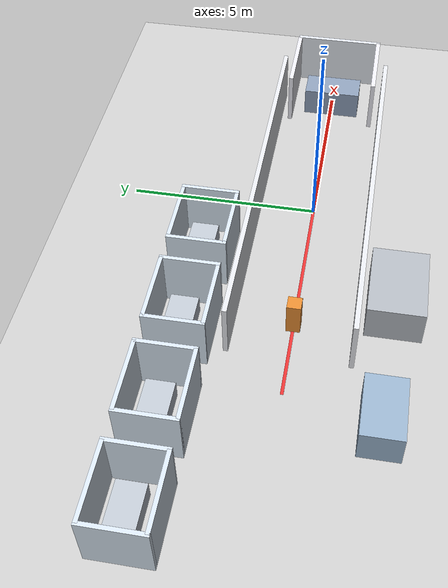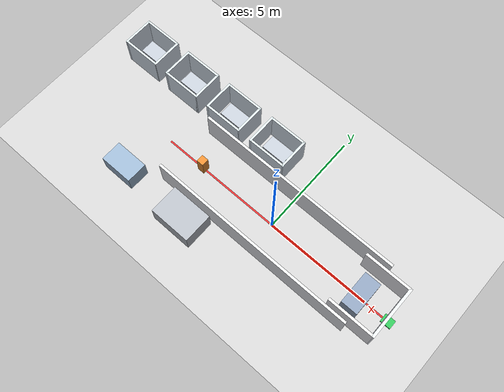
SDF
<?xml version="1.0"?>
<sdf version="1.7">
  <world name="hospital_mini">
    <gravity>0 0 -9.81</gravity>
    <magnetic_field>6e-6 2.3e-5 -4.2e-5</magnetic_field>
    <atmosphere type="adiabatic"/>

    <physics name="default_physics" default="0" type="ode">
      <max_step_size>0.001</max_step_size>
      <real_time_factor>1</real_time_factor>
      <real_time_update_rate>1000</real_time_update_rate>
    </physics>

    <scene>
      <ambient>0.55 0.55 0.55 1</ambient>
      <background>0.72 0.80 0.88 1</background>
      <shadows>true</shadows>
    </scene>

    <light name="sun" type="directional">
      <cast_shadows>true</cast_shadows>
      <pose>0 0 10 0 0 0</pose>
      <diffuse>0.85 0.85 0.85 1</diffuse>
      <specular>0.2 0.2 0.2 1</specular>
      <attenuation>
        <range>1000</range>
        <constant>0.9</constant>
        <linear>0.01</linear>
        <quadratic>0.001</quadratic>
      </attenuation>
      <direction>-0.5 0.1 -0.9</direction>
    </light>

    <include>
      <uri>model://ground_plane</uri>
    </include>

    <!-- ===== Corridor floor mark (visual only) ===== -->
    <model name="floor_lane">
      <static>true</static>
      <pose>0 0 0.001 0 0 0</pose>
      <link name="link">
        <visual name="lane">
          <geometry>
            <box>
              <size>12 0.08 0.002</size>
            </box>
          </geometry>
          <material>
            <ambient>0.85 0.15 0.15 1</ambient>
            <diffuse>0.9 0.2 0.2 1</diffuse>
          </material>
        </visual>
        <collision name="col">
          <geometry>
            <box>
              <size>12 0.08 0.002</size>
            </box>
          </geometry>
        </collision>
      </link>
    </model>

    <!-- ===== Pharmacy (origin / home) ===== -->
    <model name="pharmacy">
      <static>true</static>
      <pose>5 0 0 0 0 0</pose>
      <link name="link">
        <visual name="wall_a">
          <pose>0 1.2 0.75 0 0 0</pose>
          <geometry><box><size>2.2 0.12 1.5</size></box></geometry>
          <material><diffuse>0.92 0.92 0.95 1</diffuse></material>
        </visual>
        <visual name="wall_b">
          <pose>0 -1.2 0.75 0 0 0</pose>
          <geometry><box><size>2.2 0.12 1.5</size></box></geometry>
          <material><diffuse>0.92 0.92 0.95 1</diffuse></material>
        </visual>
        <visual name="wall_c">
          <pose>1.1 0 0.75 0 0 0</pose>
          <geometry><box><size>0.12 2.5 1.5</size></box></geometry>
          <material><diffuse>0.88 0.90 0.93 1</diffuse></material>
        </visual>
        <visual name="counter">
          <pose>-0.3 0 0.4 0 0 0</pose>
          <geometry><box><size>0.8 1.6 0.8</size></box></geometry>
          <material><diffuse>0.55 0.62 0.72 1</diffuse></material>
        </visual>
        <collision name="c_a">
          <pose>0 1.2 0.75 0 0 0</pose>
          <geometry><box><size>2.2 0.12 1.5</size></box></geometry>
        </collision>
        <collision name="c_b">
          <pose>0 -1.2 0.75 0 0 0</pose>
          <geometry><box><size>2.2 0.12 1.5</size></box></geometry>
        </collision>
        <collision name="c_c">
          <pose>1.1 0 0.75 0 0 0</pose>
          <geometry><box><size>0.12 2.5 1.5</size></box></geometry>
        </collision>
        <collision name="c_counter">
          <pose>-0.3 0 0.4 0 0 0</pose>
          <geometry><box><size>0.8 1.6 0.8</size></box></geometry>
        </collision>
      </link>
    </model>

    <!-- ===== Corridor outer walls ===== -->
    <model name="corridor_north">
      <static>true</static>
      <pose>0 1.5 0.75 0 0 0</pose>
      <link name="link">
        <visual name="v">
          <geometry><box><size>10 0.12 1.5</size></box></geometry>
          <material><diffuse>0.9 0.91 0.93 1</diffuse></material>
        </visual>
        <collision name="c">
          <geometry><box><size>10 0.12 1.5</size></box></geometry>
        </collision>
      </link>
    </model>
    <model name="corridor_south">
      <static>true</static>
      <pose>0 -1.5 0.75 0 0 0</pose>
      <link name="link">
        <visual name="v">
          <geometry><box><size>10 0.12 1.5</size></box></geometry>
          <material><diffuse>0.9 0.91 0.93 1</diffuse></material>
        </visual>
        <collision name="c">
          <geometry><box><size>10 0.12 1.5</size></box></geometry>
        </collision>
      </link>
    </model>

    <!-- ===== Wards along north side ===== -->
    <!-- ward_1 near -->
    <model name="ward_1">
      <static>true</static>
      <pose>-2.0 2.4 0 0 0 0</pose>
      <link name="link">
        <visual name="w1"><pose>0 0.9 0.75 0 0 0</pose>
          <geometry><box><size>1.8 0.1 1.5</size></box></geometry>
          <material><diffuse>0.85 0.9 0.95 1</diffuse></material>
        </visual>
        <visual name="w2"><pose>0 -0.5 0.75 0 0 0</pose>
          <geometry><box><size>1.8 0.1 1.5</size></box></geometry>
          <material><diffuse>0.85 0.9 0.95 1</diffuse></material>
        </visual>
        <visual name="w3"><pose>0.9 0.2 0.75 0 0 0</pose>
          <geometry><box><size>0.1 1.5 1.5</size></box></geometry>
          <material><diffuse>0.85 0.9 0.95 1</diffuse></material>
        </visual>
        <visual name="w4"><pose>-0.9 0.2 0.75 0 0 0</pose>
          <geometry><box><size>0.1 1.5 1.5</size></box></geometry>
          <material><diffuse>0.85 0.9 0.95 1</diffuse></material>
        </visual>
        <visual name="bed">
          <pose>0 0.3 0.25 0 0 0</pose>
          <geometry><box><size>1.2 0.7 0.5</size></box></geometry>
          <material><diffuse>0.75 0.78 0.82 1</diffuse></material>
        </visual>
        <collision name="cw1"><pose>0 0.9 0.75 0 0 0</pose>
          <geometry><box><size>1.8 0.1 1.5</size></box></geometry>
        </collision>
        <collision name="cw2"><pose>0 -0.5 0.75 0 0 0</pose>
          <geometry><box><size>1.8 0.1 1.5</size></box></geometry>
        </collision>
        <collision name="cw3"><pose>0.9 0.2 0.75 0 0 0</pose>
          <geometry><box><size>0.1 1.5 1.5</size></box></geometry>
        </collision>
        <collision name="cw4"><pose>-0.9 0.2 0.75 0 0 0</pose>
          <geometry><box><size>0.1 1.5 1.5</size></box></geometry>
        </collision>
        <collision name="cbed">
          <pose>0 0.3 0.25 0 0 0</pose>
          <geometry><box><size>1.2 0.7 0.5</size></box></geometry>
        </collision>
      </link>
    </model>

    <!-- ward_2 -->
    <model name="ward_2">
      <static>true</static>
      <pose>-4.5 2.4 0 0 0 0</pose>
      <link name="link">
        <visual name="w1"><pose>0 0.9 0.75 0 0 0</pose>
          <geometry><box><size>1.8 0.1 1.5</size></box></geometry>
          <material><diffuse>0.85 0.9 0.95 1</diffuse></material>
        </visual>
        <visual name="w2"><pose>0 -0.5 0.75 0 0 0</pose>
          <geometry><box><size>1.8 0.1 1.5</size></box></geometry>
          <material><diffuse>0.85 0.9 0.95 1</diffuse></material>
        </visual>
        <visual name="w3"><pose>0.9 0.2 0.75 0 0 0</pose>
          <geometry><box><size>0.1 1.5 1.5</size></box></geometry>
          <material><diffuse>0.85 0.9 0.95 1</diffuse></material>
        </visual>
        <visual name="w4"><pose>-0.9 0.2 0.75 0 0 0</pose>
          <geometry><box><size>0.1 1.5 1.5</size></box></geometry>
          <material><diffuse>0.85 0.9 0.95 1</diffuse></material>
        </visual>
        <visual name="bed">
          <pose>0 0.3 0.25 0 0 0</pose>
          <geometry><box><size>1.2 0.7 0.5</size></box></geometry>
          <material><diffuse>0.75 0.78 0.82 1</diffuse></material>
        </visual>
        <collision name="cw1"><pose>0 0.9 0.75 0 0 0</pose>
          <geometry><box><size>1.8 0.1 1.5</size></box></geometry>
        </collision>
        <collision name="cw2"><pose>0 -0.5 0.75 0 0 0</pose>
          <geometry><box><size>1.8 0.1 1.5</size></box></geometry>
        </collision>
        <collision name="cw3"><pose>0.9 0.2 0.75 0 0 0</pose>
          <geometry><box><size>0.1 1.5 1.5</size></box></geometry>
        </collision>
        <collision name="cw4"><pose>-0.9 0.2 0.75 0 0 0</pose>
          <geometry><box><size>0.1 1.5 1.5</size></box></geometry>
        </collision>
        <collision name="cbed">
          <pose>0 0.3 0.25 0 0 0</pose>
          <geometry><box><size>1.2 0.7 0.5</size></box></geometry>
        </collision>
      </link>
    </model>

    <!-- ward_3 mid -->
    <model name="ward_3">
      <static>true</static>
      <pose>-7.0 2.4 0 0 0 0</pose>
      <link name="link">
        <visual name="w1"><pose>0 0.9 0.75 0 0 0</pose>
          <geometry><box><size>1.8 0.1 1.5</size></box></geometry>
          <material><diffuse>0.85 0.9 0.95 1</diffuse></material>
        </visual>
        <visual name="w2"><pose>0 -0.5 0.75 0 0 0</pose>
          <geometry><box><size>1.8 0.1 1.5</size></box></geometry>
          <material><diffuse>0.85 0.9 0.95 1</diffuse></material>
        </visual>
        <visual name="w3"><pose>0.9 0.2 0.75 0 0 0</pose>
          <geometry><box><size>0.1 1.5 1.5</size></box></geometry>
          <material><diffuse>0.85 0.9 0.95 1</diffuse></material>
        </visual>
        <visual name="w4"><pose>-0.9 0.2 0.75 0 0 0</pose>
          <geometry><box><size>0.1 1.5 1.5</size></box></geometry>
          <material><diffuse>0.85 0.9 0.95 1</diffuse></material>
        </visual>
        <visual name="bed">
          <pose>0 0.3 0.25 0 0 0</pose>
          <geometry><box><size>1.2 0.7 0.5</size></box></geometry>
          <material><diffuse>0.75 0.78 0.82 1</diffuse></material>
        </visual>
        <collision name="cw1"><pose>0 0.9 0.75 0 0 0</pose>
          <geometry><box><size>1.8 0.1 1.5</size></box></geometry>
        </collision>
        <collision name="cw2"><pose>0 -0.5 0.75 0 0 0</pose>
          <geometry><box><size>1.8 0.1 1.5</size></box></geometry>
        </collision>
        <collision name="cw3"><pose>0.9 0.2 0.75 0 0 0</pose>
          <geometry><box><size>0.1 1.5 1.5</size></box></geometry>
        </collision>
        <collision name="cw4"><pose>-0.9 0.2 0.75 0 0 0</pose>
          <geometry><box><size>0.1 1.5 1.5</size></box></geometry>
        </collision>
        <collision name="cbed">
          <pose>0 0.3 0.25 0 0 0</pose>
          <geometry><box><size>1.2 0.7 0.5</size></box></geometry>
        </collision>
      </link>
    </model>

    <!-- ward_4 far -->
    <model name="ward_4">
      <static>true</static>
      <pose>-9.5 2.4 0 0 0 0</pose>
      <link name="link">
        <visual name="w1"><pose>0 0.9 0.75 0 0 0</pose>
          <geometry><box><size>1.8 0.1 1.5</size></box></geometry>
          <material><diffuse>0.85 0.9 0.95 1</diffuse></material>
        </visual>
        <visual name="w2"><pose>0 -0.5 0.75 0 0 0</pose>
          <geometry><box><size>1.8 0.1 1.5</size></box></geometry>
          <material><diffuse>0.85 0.9 0.95 1</diffuse></material>
        </visual>
        <visual name="w3"><pose>0.9 0.2 0.75 0 0 0</pose>
          <geometry><box><size>0.1 1.5 1.5</size></box></geometry>
          <material><diffuse>0.85 0.9 0.95 1</diffuse></material>
        </visual>
        <visual name="w4"><pose>-0.9 0.2 0.75 0 0 0</pose>
          <geometry><box><size>0.1 1.5 1.5</size></box></geometry>
          <material><diffuse>0.85 0.9 0.95 1</diffuse></material>
        </visual>
        <visual name="bed">
          <pose>0 0.3 0.25 0 0 0</pose>
          <geometry><box><size>1.2 0.7 0.5</size></box></geometry>
          <material><diffuse>0.75 0.78 0.82 1</diffuse></material>
        </visual>
        <collision name="cw1"><pose>0 0.9 0.75 0 0 0</pose>
          <geometry><box><size>1.8 0.1 1.5</size></box></geometry>
        </collision>
        <collision name="cw2"><pose>0 -0.5 0.75 0 0 0</pose>
          <geometry><box><size>1.8 0.1 1.5</size></box></geometry>
        </collision>
        <collision name="cw3"><pose>0.9 0.2 0.75 0 0 0</pose>
          <geometry><box><size>0.1 1.5 1.5</size></box></geometry>
        </collision>
        <collision name="cw4"><pose>-0.9 0.2 0.75 0 0 0</pose>
          <geometry><box><size>0.1 1.5 1.5</size></box></geometry>
        </collision>
        <collision name="cbed">
          <pose>0 0.3 0.25 0 0 0</pose>
          <geometry><box><size>1.2 0.7 0.5</size></box></geometry>
        </collision>
      </link>
    </model>

    <!-- south-side obstacles / rooms -->
    <model name="storage">
      <static>true</static>
      <pose>-3  -2.4 0 0 0 0</pose>
      <link name="link">
        <visual name="v"><pose>0 0 0.5 0 0 0</pose>
          <geometry><box><size>2.0 1.4 1.0</size></box></geometry>
          <material><diffuse>0.7 0.72 0.75 1</diffuse></material>
        </visual>
        <collision name="c"><pose>0 0 0.5 0 0 0</pose>
          <geometry><box><size>2.0 1.4 1.0</size></box></geometry>
        </collision>
      </link>
    </model>

    <model name="nurse_station">
      <static>true</static>
      <pose>-6.5 -2.3 0 0 0 0</pose>
      <link name="link">
        <visual name="v"><pose>0 0 0.45 0 0 0</pose>
          <geometry><box><size>1.6 1.0 0.9</size></box></geometry>
          <material><diffuse>0.6 0.7 0.8 1</diffuse></material>
        </visual>
        <collision name="c"><pose>0 0 0.45 0 0 0</pose>
          <geometry><box><size>1.6 1.0 0.9</size></box></geometry>
        </collision>
      </link>
    </model>

    <!-- Dynamic obstacle (simple box "pedestrian") -->
    <model name="pedestrian_box">
      <static>false</static>
      <pose>-4 0 0.45 0 0 0</pose>
      <link name="link">
        <visual name="v">
          <geometry><box><size>0.35 0.35 0.9</size></box></geometry>
          <material><diffuse>0.9 0.55 0.2 1</diffuse></material>
        </visual>
        <collision name="c">
          <geometry><box><size>0.35 0.35 0.9</size></box></geometry>
        </collision>
        <inertial>
          <mass>25</mass>
          <inertia>
            <ixx>1.2</ixx><iyy>1.2</iyy><izz>1.2</izz>
            <ixy>0</ixy><ixz>0</ixz><iyz>0</iyz>
          </inertia>
        </inertial>
      </link>
    </model>

    <!-- Charging dock visual -->
    <model name="charge_dock">
      <static>true</static>
      <pose>6.2 0 0 0 0 0</pose>
      <link name="link">
        <visual name="v">
          <pose>0 0 0.05 0 0 0</pose>
          <geometry><box><size>0.5 0.4 0.1</size></box></geometry>
          <material><diffuse>0.2 0.75 0.35 1</diffuse></material>
        </visual>
        <collision name="c">
          <pose>0 0 0.05 0 0 0</pose>
          <geometry><box><size>0.5 0.4 0.1</size></box></geometry>
        </collision>
      </link>
    </model>

  </world>
</sdf>
